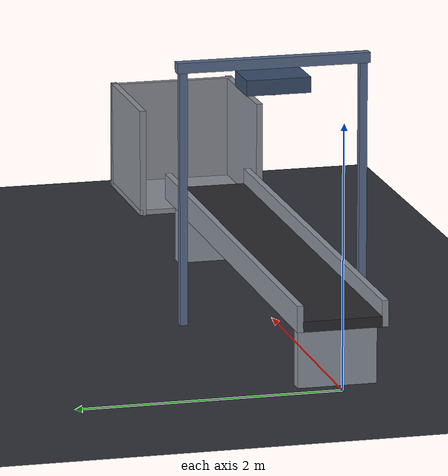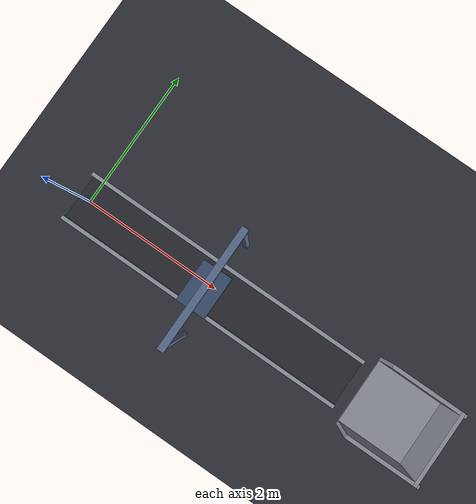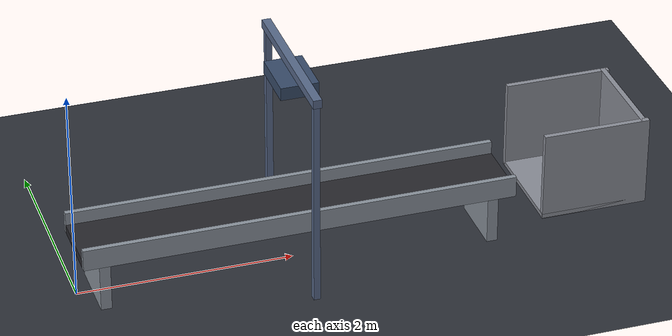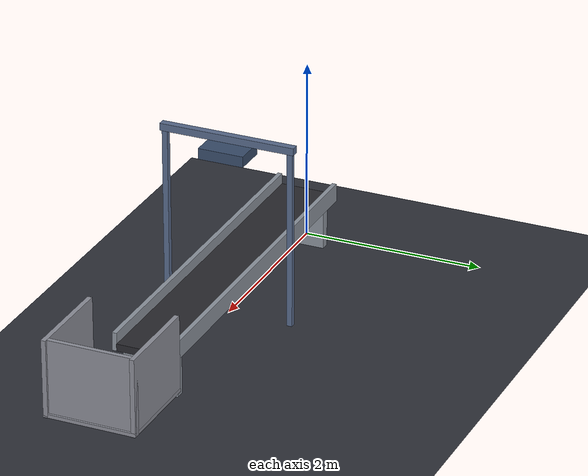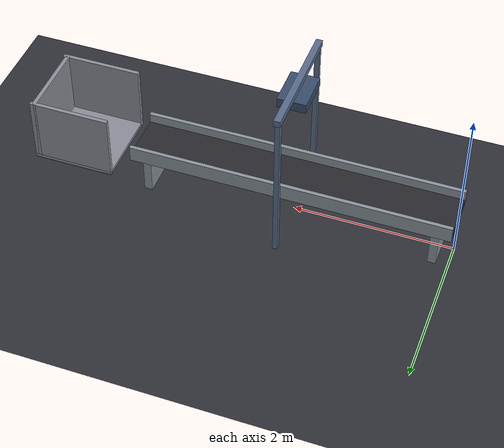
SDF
<?xml version="1.0" ?>
<sdf version="1.10">
  <world name="bhs_world">

    <physics name="2ms" type="ignored">
      <max_step_size>0.002</max_step_size>
      <real_time_factor>1.0</real_time_factor>
    </physics>
    <plugin filename="gz-sim-physics-system" name="gz::sim::systems::Physics"/>
    <plugin filename="gz-sim-user-commands-system" name="gz::sim::systems::UserCommands"/>
    <plugin filename="gz-sim-scene-broadcaster-system" name="gz::sim::systems::SceneBroadcaster"/>
    <plugin filename="gz-sim-sensors-system" name="gz::sim::systems::Sensors">
      <render_engine>ogre2</render_engine>
    </plugin>
    <plugin filename="gz-sim-contact-system" name="gz::sim::systems::Contact"/>

    <gui fullscreen="false">
      <plugin filename="MinimalScene" name="3D View">
        <gz-gui>
          <title>3D View</title>
          <property type="bool" key="showTitleBar">false</property>
          <property type="string" key="state">docked</property>
        </gz-gui>
        <engine>ogre2</engine>
        <scene>scene</scene>
        <ambient_light>0.4 0.4 0.45</ambient_light>
        <background_color>0.05 0.06 0.09</background_color>
        <camera_pose>4.5 -3.2 2.6 0 0.42 2.35</camera_pose>
      </plugin>
      <plugin filename="GzSceneManager" name="Scene Manager"/>
      <plugin filename="InteractiveViewControl" name="Interactive view control"/>
      <plugin filename="CameraTracking" name="Camera Tracking"/>
    </gui>

    <scene>
      <ambient>0.32 0.33 0.38 1.0</ambient>
      <background>0.04 0.05 0.08 1.0</background>
      <shadows>true</shadows>
      <grid>false</grid>
      <sky/>
    </scene>

    <!-- Key directional sun -->
    <light type="directional" name="sun">
      <cast_shadows>true</cast_shadows>
      <pose>3 -2 8 0 0.8 0.6</pose>
      <diffuse>1.0 0.97 0.92 1</diffuse>
      <specular>0.4 0.4 0.4 1</specular>
      <attenuation>
        <range>50</range>
        <constant>0.9</constant>
        <linear>0.005</linear>
        <quadratic>0.0001</quadratic>
      </attenuation>
      <direction>-0.4 0.3 -1.0</direction>
    </light>
    <!-- Rim fill -->
    <light type="point" name="fill_left">
      <pose>-2 3 3 0 0 0</pose>
      <diffuse>0.4 0.5 0.7 1</diffuse>
      <specular>0.1 0.1 0.2 1</specular>
      <attenuation>
        <range>15</range>
        <constant>0.5</constant>
        <linear>0.05</linear>
        <quadratic>0.001</quadratic>
      </attenuation>
    </light>
    <!-- Top key over sensor frame -->
    <light type="spot" name="sensor_key">
      <pose>2.0 0 3.5 0 1.4 0</pose>
      <diffuse>0.9 0.92 1.0 1</diffuse>
      <specular>0.5 0.5 0.5 1</specular>
      <attenuation>
        <range>10</range>
        <constant>0.5</constant>
        <linear>0.05</linear>
        <quadratic>0.001</quadratic>
      </attenuation>
      <direction>0 0 -1</direction>
      <spot>
        <inner_angle>0.5</inner_angle>
        <outer_angle>1.0</outer_angle>
        <falloff>1.0</falloff>
      </spot>
    </light>

    <!-- Floor -->
    <model name="floor">
      <static>true</static>
      <link name="floor_link">
        <collision name="col">
          <geometry><plane><normal>0 0 1</normal><size>30 30</size></plane></geometry>
          <surface>
            <friction><ode><mu>0.7</mu><mu2>0.7</mu2></ode></friction>
          </surface>
        </collision>
        <visual name="vis">
          <geometry><plane><normal>0 0 1</normal><size>30 30</size></plane></geometry>
          <material>
            <ambient>0.10 0.11 0.13 1</ambient>
            <diffuse>0.18 0.19 0.22 1</diffuse>
            <specular>0.05 0.05 0.05 1</specular>
          </material>
        </visual>
      </link>
    </model>

    <!--
      BHS Conveyor: 4m × 0.6m × 0.08m belt, top surface at z=0.5.
      TrackController drives the belt surface; fdir1 perpendicular to motion.
    -->
    <model name="bhs_conveyor">
      <static>false</static>
      <pose>2.0 0 0.50 0 0 0</pose>
      <link name="belt">
        <pose relative_to="__model__">0 0 0 0 0 0</pose>
        <inertial>
          <mass>200</mass>
          <inertia>
            <ixx>6.0</ixx><ixy>0</ixy><ixz>0</ixz>
            <iyy>266</iyy><iyz>0</iyz>
            <izz>270</izz>
          </inertia>
        </inertial>
        <collision name="belt_col">
          <pose>0 0 0 0 0 0</pose>
          <geometry><box><size>4.0 0.6 0.08</size></box></geometry>
          <surface>
            <friction>
              <ode>
                <mu>0.5</mu>
                <mu2>150</mu2>
                <fdir1>0 1 0</fdir1>
              </ode>
            </friction>
          </surface>
        </collision>
        <visual name="belt_vis">
          <geometry><box><size>4.0 0.6 0.08</size></box></geometry>
          <material>
            <ambient>0.08 0.08 0.10 1</ambient>
            <diffuse>0.16 0.16 0.18 1</diffuse>
            <specular>0.5 0.5 0.5 1</specular>
          </material>
        </visual>
      </link>

      <!-- Side rails (kinematic, attached) -->
      <link name="rail_left">
        <pose relative_to="belt">0 0.32 0.06 0 0 0</pose>
        <inertial><mass>5</mass><inertia><ixx>0.5</ixx><iyy>0.5</iyy><izz>0.5</izz></inertia></inertial>
        <collision name="col"><geometry><box><size>4.0 0.05 0.20</size></box></geometry></collision>
        <visual name="vis">
          <geometry><box><size>4.0 0.05 0.20</size></box></geometry>
          <material>
            <ambient>0.30 0.30 0.35 1</ambient>
            <diffuse>0.55 0.58 0.62 1</diffuse>
            <specular>0.6 0.6 0.6 1</specular>
          </material>
        </visual>
      </link>
      <link name="rail_right">
        <pose relative_to="belt">0 -0.32 0.06 0 0 0</pose>
        <inertial><mass>5</mass><inertia><ixx>0.5</ixx><iyy>0.5</iyy><izz>0.5</izz></inertia></inertial>
        <collision name="col"><geometry><box><size>4.0 0.05 0.20</size></box></geometry></collision>
        <visual name="vis">
          <geometry><box><size>4.0 0.05 0.20</size></box></geometry>
          <material>
            <ambient>0.30 0.30 0.35 1</ambient>
            <diffuse>0.55 0.58 0.62 1</diffuse>
            <specular>0.6 0.6 0.6 1</specular>
          </material>
        </visual>
      </link>
      <joint name="belt_rail_l_fix" type="fixed">
        <parent>belt</parent>
        <child>rail_left</child>
      </joint>
      <joint name="belt_rail_r_fix" type="fixed">
        <parent>belt</parent>
        <child>rail_right</child>
      </joint>

      <!-- Support legs -->
      <link name="leg_a">
        <pose relative_to="belt">-1.8 0 -0.27 0 0 0</pose>
        <inertial><mass>5</mass><inertia><ixx>0.5</ixx><iyy>0.5</iyy><izz>0.5</izz></inertia></inertial>
        <visual name="vis">
          <geometry><box><size>0.10 0.6 0.50</size></box></geometry>
          <material><ambient>0.30 0.30 0.35 1</ambient><diffuse>0.55 0.58 0.62 1</diffuse></material>
        </visual>
      </link>
      <link name="leg_b">
        <pose relative_to="belt">1.8 0 -0.27 0 0 0</pose>
        <inertial><mass>5</mass><inertia><ixx>0.5</ixx><iyy>0.5</iyy><izz>0.5</izz></inertia></inertial>
        <visual name="vis">
          <geometry><box><size>0.10 0.6 0.50</size></box></geometry>
          <material><ambient>0.30 0.30 0.35 1</ambient><diffuse>0.55 0.58 0.62 1</diffuse></material>
        </visual>
      </link>
      <joint name="belt_leg_a_fix" type="fixed"><parent>belt</parent><child>leg_a</child></joint>
      <joint name="belt_leg_b_fix" type="fixed"><parent>belt</parent><child>leg_b</child></joint>

      <!-- Pin the conveyor model to the world (no motion) -->
      <joint name="world_fix" type="fixed">
        <parent>world</parent>
        <child>belt</child>
      </joint>

      <!-- TrackController: surface velocity along X (belt motion) -->
      <plugin filename="gz-sim-track-controller-system"
              name="gz::sim::systems::TrackController">
        <link>belt</link>
        <odometry_publish_frequency>1</odometry_publish_frequency>
      </plugin>
    </model>

    <!-- Sensor frame: arch over conveyor at x=2.0 -->
    <model name="sensor_frame">
      <static>true</static>
      <pose>2.0 0 0 0 0 0</pose>
      <link name="pillar_left">
        <pose>0 0.7 1.0 0 0 0</pose>
        <visual name="vis"><geometry><box><size>0.06 0.06 2.0</size></box></geometry>
          <material><ambient>0.18 0.22 0.30 1</ambient><diffuse>0.35 0.42 0.55 1</diffuse></material>
        </visual>
      </link>
      <link name="pillar_right">
        <pose>0 -0.7 1.0 0 0 0</pose>
        <visual name="vis"><geometry><box><size>0.06 0.06 2.0</size></box></geometry>
          <material><ambient>0.18 0.22 0.30 1</ambient><diffuse>0.35 0.42 0.55 1</diffuse></material>
        </visual>
      </link>
      <link name="crossbar">
        <pose>0 0 2.0 0 0 0</pose>
        <visual name="vis"><geometry><box><size>0.08 1.5 0.08</size></box></geometry>
          <material><ambient>0.18 0.22 0.30 1</ambient><diffuse>0.35 0.42 0.55 1</diffuse></material>
        </visual>
      </link>
      <link name="sensor_box">
        <pose>0 0 1.85 0 0 0</pose>
        <visual name="vis"><geometry><box><size>0.35 0.50 0.12</size></box></geometry>
          <material>
            <ambient>0.12 0.18 0.25 1</ambient>
            <diffuse>0.22 0.30 0.42 1</diffuse>
            <specular>0.6 0.6 0.7 1</specular>
          </material>
        </visual>
      </link>
      <link name="lens_rgb_l">
        <pose>-0.06 -0.18 1.79 0 0 0</pose>
        <visual name="vis"><geometry><cylinder><radius>0.028</radius><length>0.020</length></cylinder></geometry>
          <material><ambient>0.05 0.05 0.05 1</ambient><diffuse>0.08 0.08 0.10 1</diffuse><specular>0.9 0.9 0.9 1</specular></material>
        </visual>
      </link>
      <link name="lens_rgb_r">
        <pose>-0.06 0.18 1.79 0 0 0</pose>
        <visual name="vis"><geometry><cylinder><radius>0.028</radius><length>0.020</length></cylinder></geometry>
          <material><ambient>0.05 0.05 0.05 1</ambient><diffuse>0.08 0.08 0.10 1</diffuse><specular>0.9 0.9 0.9 1</specular></material>
        </visual>
      </link>
      <link name="lens_pol">
        <pose>0.10 0 1.79 0 0 0</pose>
        <visual name="vis"><geometry><cylinder><radius>0.024</radius><length>0.020</length></cylinder></geometry>
          <material><ambient>0.08 0.10 0.16 1</ambient><diffuse>0.18 0.22 0.36 1</diffuse><specular>0.95 0.95 0.95 1</specular></material>
        </visual>
      </link>
      <link name="ir_ring">
        <pose>0.0 0 1.78 0 0 0</pose>
        <visual name="vis"><geometry><box><size>0.18 0.04 0.025</size></box></geometry>
          <material><ambient>0.30 0.05 0.05 1</ambient><diffuse>0.85 0.10 0.10 1</diffuse><emissive>0.35 0.04 0.04 1</emissive></material>
        </visual>
      </link>
    </model>

    <!-- Downstream ULD bin -->
    <model name="uld_ld3">
      <static>true</static>
      <pose>4.7 0 0.30 0 0 0</pose>
      <link name="base">
        <visual name="vis"><geometry><box><size>1.0 1.0 0.04</size></box></geometry>
          <material><ambient>0.30 0.30 0.32 1</ambient><diffuse>0.55 0.56 0.60 1</diffuse><specular>0.5 0.5 0.5 1</specular></material></visual>
        <collision name="col"><geometry><box><size>1.0 1.0 0.04</size></box></geometry></collision>
      </link>
      <link name="wall_back">
        <pose>0.45 0 0.40 0 0 0</pose>
        <visual name="vis"><geometry><box><size>0.05 1.0 0.85</size></box></geometry>
          <material><ambient>0.30 0.30 0.32 1</ambient><diffuse>0.55 0.56 0.60 1</diffuse></material></visual>
        <collision name="col"><geometry><box><size>0.05 1.0 0.85</size></box></geometry></collision>
      </link>
      <link name="wall_l">
        <pose>0 0.475 0.40 0 0 0</pose>
        <visual name="vis"><geometry><box><size>1.0 0.05 0.85</size></box></geometry>
          <material><ambient>0.30 0.30 0.32 1</ambient><diffuse>0.55 0.56 0.60 1</diffuse></material></visual>
        <collision name="col"><geometry><box><size>1.0 0.05 0.85</size></box></geometry></collision>
      </link>
      <link name="wall_r">
        <pose>0 -0.475 0.40 0 0 0</pose>
        <visual name="vis"><geometry><box><size>1.0 0.05 0.85</size></box></geometry>
          <material><ambient>0.30 0.30 0.32 1</ambient><diffuse>0.55 0.56 0.60 1</diffuse></material></visual>
        <collision name="col"><geometry><box><size>1.0 0.05 0.85</size></box></geometry></collision>
      </link>
    </model>

    <!-- Cinematic camera for recording (side-3/4 view) -->
    <model name="cinematic_cam">
      <static>true</static>
      <pose>0.2 -2.8 1.55 0 0.18 1.05</pose>
      <link name="cam_link">
        <sensor name="cinematic" type="camera">
          <update_rate>30</update_rate>
          <camera>
            <horizontal_fov>1.20</horizontal_fov>
            <image><width>1920</width><height>1080</height><format>R8G8B8</format></image>
            <clip><near>0.05</near><far>100</far></clip>
          </camera>
          <topic>cinematic</topic>
          <always_on>true</always_on>
          <plugin filename="gz-sim-camera-video-recorder-system"
                  name="gz::sim::systems::CameraVideoRecorder">
            <service>cinematic/record_video</service>
            <use_sim_time>true</use_sim_time>
          </plugin>
        </sensor>
      </link>
    </model>

    <!-- Overhead sensor camera -->
    <model name="overhead_cam">
      <static>true</static>
      <pose>2.0 0 1.65 0 1.5708 0</pose>
      <link name="cam_link">
        <sensor name="overhead" type="camera">
          <update_rate>30</update_rate>
          <camera>
            <horizontal_fov>1.05</horizontal_fov>
            <image><width>1280</width><height>720</height><format>R8G8B8</format></image>
            <clip><near>0.05</near><far>10</far></clip>
          </camera>
          <topic>overhead</topic>
          <always_on>true</always_on>
        </sensor>
      </link>
    </model>

    <!-- Drive the belt at 0.4167 m/s once at startup -->
    <plugin filename="gz-sim-triggered-publisher-system"
            name="gz::sim::systems::TriggeredPublisher">
      <input type="gz.msgs.Boolean" topic="/dummy_never_fires"/>
      <output type="gz.msgs.Double" topic="/model/bhs_conveyor/link/belt/track_cmd_vel">
        data: 0.4167
      </output>
    </plugin>

  </world>
</sdf>
